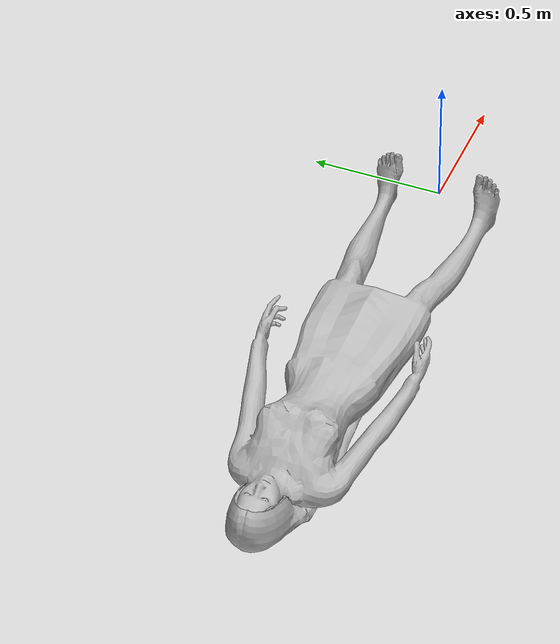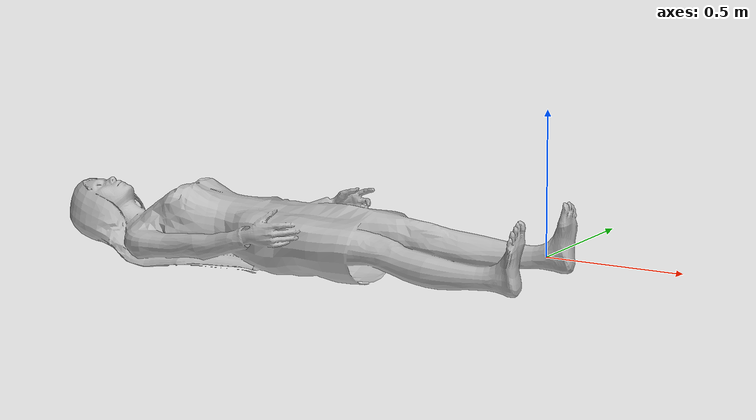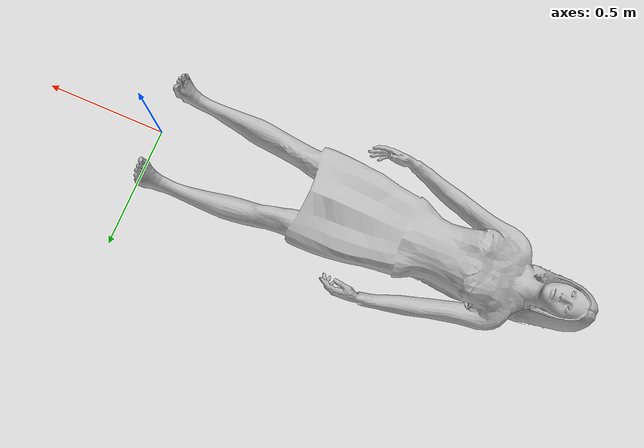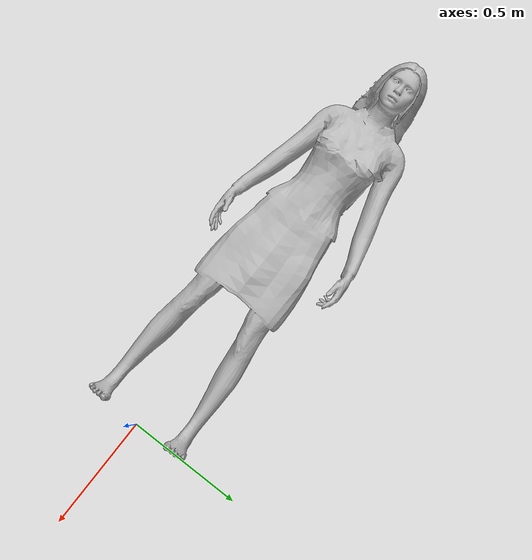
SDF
<?xml version='1.0'?>
<sdf version="1.5">
  <model name="test_human">
    <link name="link">

      <inertial>
        <pose>0 -0.1 0.95 0 0 0</pose>
        <mass>60.0</mass>
        <inertia>
          <!-- http://gazebosim.org/tutorials?tut=inertia&cat=build_robot -->
          <ixx>24.88</ixx>
          <ixy>0.0</ixy>
          <ixz>0.0</ixz>
          <iyy>25.73</iyy>
          <iyz>0.0</iyz>
          <izz>2.48</izz>
        </inertia>
      </inertial>

      <collision name="test_human_collision">
        <geometry>
          <box>
            <size>0.5 0.35 0.02</size>
          </box>
        </geometry>
      </collision>

      <visual name="test_human_visual">
      <pose>0 0 0.01 0 0 1.57</pose>
      <geometry>
		<mesh>
			<uri>model://test_human/meshes/test_human.dae</uri>
		</mesh>
	  </geometry>
	  </visual>

    </link>
  </model>
</sdf>
